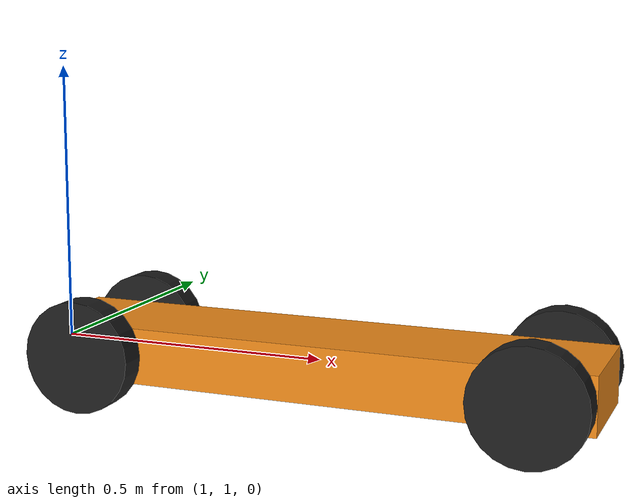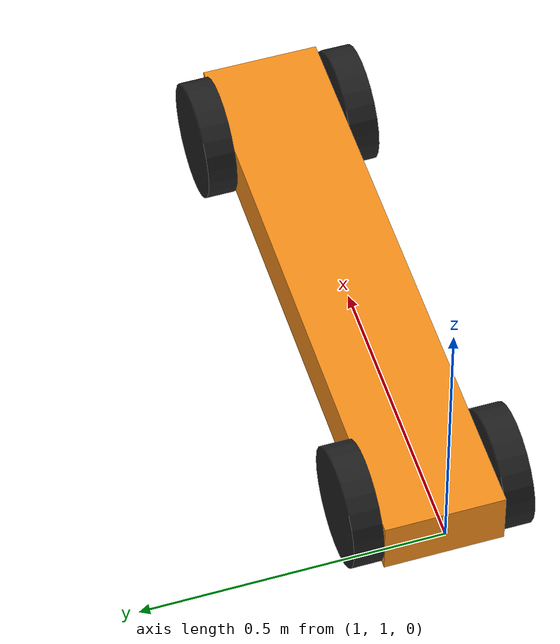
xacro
<?xml version="1.0"?>
<robot name="primeberry_one" xmlns:xacro="http://www.ros.org/wiki/xacro">

  <xacro:include filename="gazebo_control.xacro"/>

	<!-- World link -->
  <link name="world">

  </link>

	<!-- Chassis START-->
	<joint name="base_joint" type="fixed">
        <origin xyz="1.5 1.0 0.0"/>
    <parent link="world"/>
    <child link="chassis"/>
  </joint>

  <link name="chassis">
    <collision>
      <geometry>
            <box size="1 0.2 0.1"/>
      </geometry>
    </collision>
    <visual>
      <geometry>
         <box size="1 0.2 0.1"/>
      </geometry>
      <material name="orange"/>
    </visual>
    <inertial>
      <mass value="1"/>
      <inertia ixx="0.4" ixy="0.1" ixz="0.1" iyy="0.4" iyz="0.1" izz="0.2"/>
    </inertial>
  </link>

  <gazebo reference="chassis">
    <!--Stiffness -->
    <kp>1000000.0</kp>
    <!--Dampening-->
    <kd>0.1</kd>
    <dampingFactor>0</dampingFactor>
    <material>Gazebo/White</material>
    <selfCollide>true</selfCollide>
    <turnGravityOff>false</turnGravityOff>
    <mu1 value="0.1"/>
    <mu2 value="0.1"/>
    <fdir1 value="0 0 0"/>
  </gazebo>
	<!-- Chassis END -->

  <!-- Right Wheel - Start -->
	<link name="front_right_wheel">

		<collision>
		  <origin xyz="0 0 0" rpy="0 1.5708 1.5708" />
		  <geometry>
		   <cylinder length="0.05" radius="0.1"/>
		  </geometry>
		</collision>

		<visual>
		  <origin xyz="0 0 0" rpy="0 1.5708 1.5708" />
		  <geometry>
			<cylinder length="0.05" radius="0.1"/>
		  </geometry>
		  <material name="black"/>
		</visual>

		<inertial>
		  <origin xyz="0 0 0" rpy="0 1.5708 1.5708" />
		  <mass value="0.2"/>
		  <cylinder_inertia m="0.2" r="0.3" h="0.1"/>
      <inertia ixx="0.4" ixy="0.1" ixz="0.1" iyy="0.4" iyz="0.1" izz="0.2"/>
	  </inertial>

	</link>
  <gazebo reference="front_right_wheel">
    <mu1 value="2.0"/>
    <mu2 value="2.0"/>
    <kp  value="10000000.0" />
    <kd  value="1.0" />
    <fdir1 value="0 1 0"/>
    <material>Gazebo/Blue</material>
  </gazebo>

	<link name="front_right_wheel_assembly">
		<collision>
		  <origin xyz="0 0 0" rpy="0 1.5708 1.5708" />
		  <geometry>
		   <cylinder length="0.001" radius="0.04"/>
		  </geometry>
		</collision>

		<visual>
		  <origin xyz="0 0 0" rpy="0 1.5708 1.5708" />
		  <geometry>
			<cylinder length="0.001" radius="0.04"/>
		  </geometry>
		  <material name="black"/>
		</visual>

		<inertial>
		  <origin xyz="0 0 0" rpy="0 1.5708 1.5708" />
		  <mass value="0.2"/>
		  <cylinder_inertia m="0.2" r="0.3" h="0.1"/>
      <inertia ixx="0.4" ixy="0.1" ixz="0.1" iyy="0.4" iyz="0.1" izz="0.2"/>
	  </inertial>
	</link>

  <gazebo reference="front_right_wheel_assembly">
    <mu1 value="2.0"/>
    <mu2 value="2.0"/>
    <kp  value="10000000.0" />
    <kd  value="1.0" />
    <fdir1 value="0 1 0"/>
    <material>Gazebo/Black</material>
  </gazebo>

  <joint name="front_right_wheel_hinge" type="revolute">
    <parent link="chassis"/>
    <child link="front_right_wheel_assembly"/>
    <origin xyz="0.4 0.1005 0.0" rpy="0 0 0" />
    <axis xyz="0 0 1" rpy="0 0 0" />
    <limit effort="100" velocity="1" lower="-1" upper="1"/>
    <dynamics damping="0.0" friction="0.0"/>
  </joint>

  <joint name="front_right_wheel_rotate" type="continuous">
    <parent link="front_right_wheel_assembly"/>
    <child link="front_right_wheel"/>
    <origin xyz="0.0 0.025 0.0" rpy="0 0 0" />
    <axis xyz="0 1 0" rpy="0 0 0" />
    <limit effort="100" velocity="50"/>
    <dynamics damping="0.0" friction="0.0"/>
  </joint>

  <transmission name="trans_front_right_wheel_hing">
    <type>transmission_interface/SimpleTransmission</type>
    <joint name="front_right_wheel_hinge">
      <hardwareInterface>EffortJointInterface</hardwareInterface>
    </joint>
    <actuator name="motor1">
      <hardwareInterface>EffortJointInterface</hardwareInterface>
      <mechanicalReduction>1</mechanicalReduction>
    </actuator>
  </transmission>

  <transmission name="trans_front_right_wheel_rotate">
    <type>transmission_interface/SimpleTransmission</type>
    <joint name="front_right_wheel_rotate">
      <hardwareInterface>EffortJointInterface</hardwareInterface>
    </joint>
    <actuator name="motor_front_right_wheel_rotate">
      <hardwareInterface>EffortJointInterface</hardwareInterface>
      <mechanicalReduction>1</mechanicalReduction>
    </actuator>
  </transmission>

  <!-- Right Wheel - End -->

  <!-- Left Wheel - Start  -->
	<link name="front_left_wheel">

		<collision>
		  <origin xyz="0 0 0" rpy="0 1.5708 1.5708" />
		  <geometry>
		   <cylinder length="0.05" radius="0.1"/>
		  </geometry>
		</collision>

		<visual>
		  <origin xyz="0 0 0" rpy="0 1.5708 1.5708" />
		  <geometry>
			<cylinder length="0.05" radius="0.1"/>
		  </geometry>
		  <material name="black"/>
		</visual>

		<inertial>
		  <origin xyz="0 0 0" rpy="0 1.5708 1.5708" />
		  <mass value="0.2"/>
		  <cylinder_inertia m="0.2" r="0.3" h="0.1"/>
      <inertia ixx="0.4" ixy="0.1" ixz="0.1" iyy="0.4" iyz="0.1" izz="0.2"/>
	  </inertial>

	</link>
  <gazebo reference="front_left_wheel">
    <mu1 value="2.0"/>
    <mu2 value="2.0"/>
    <kp  value="10000000.0" />
    <kd  value="1.0" />
    <fdir1 value="0 1 0"/>
    <material>Gazebo/Black</material>
  </gazebo>

	<link name="front_left_wheel_assembly">
		<collision>
		  <origin xyz="0 0 0" rpy="0 1.5708 1.5708" />
		  <geometry>
		   <cylinder length="0.001" radius="0.04"/>
		  </geometry>
		</collision>

		<visual>
		  <origin xyz="0 0 0" rpy="0 1.5708 1.5708" />
		  <geometry>
			<cylinder length="0.001" radius="0.04"/>
		  </geometry>
		  <material name="black"/>
		</visual>

		<inertial>
		  <origin xyz="0 0 0" rpy="0 1.5708 1.5708" />
		  <mass value="0.2"/>
		  <cylinder_inertia m="0.2" r="0.3" h="0.1"/>
      <inertia ixx="0.4" ixy="0.1" ixz="0.1" iyy="0.4" iyz="0.1" izz="0.2"/>
	  </inertial>
	</link>

  <gazebo reference="front_left_wheel_assembly">
    <mu1 value="2.0"/>
    <mu2 value="2.0"/>
    <kp  value="10000000.0" />
    <kd  value="1.0" />
    <fdir1 value="0 1 0"/>
    <material>Gazebo/Black</material>
  </gazebo>

  <joint name="front_left_wheel_hinge" type="revolute">
    <parent link="chassis"/>
    <child link="front_left_wheel_assembly"/>
    <origin xyz="0.4 -0.1005 0.0" rpy="0 0 0" />
    <axis xyz="0 0 1" rpy="0 0 0" />
    <limit effort="100" velocity="1" lower="-1" upper="1"/>
    <dynamics damping="0.0" friction="0.0"/>
  </joint>

  <joint name="front_left_wheel_rotate" type="continuous">
    <parent link="front_left_wheel_assembly"/>
    <child link="front_left_wheel"/>
    <origin xyz="0.0 -0.025 0.0" rpy="0 0 0" />
    <axis xyz="0 1 0" rpy="0 0 0" />
    <limit effort="0" velocity="0"/>
    <dynamics damping="0.0" friction="0.0"/>
  </joint>

  <transmission name="tran2">
    <type>transmission_interface/SimpleTransmission</type>
    <joint name="front_left_wheel_hinge">
      <hardwareInterface>EffortJointInterface</hardwareInterface>
    </joint>
    <actuator name="motor2">
      <hardwareInterface>EffortJointInterface</hardwareInterface>
      <mechanicalReduction>1</mechanicalReduction>
    </actuator>
  </transmission>

  <transmission name="trans_front_left_wheel_rotate">
    <type>transmission_interface/SimpleTransmission</type>
    <joint name="front_left_wheel_rotate">
      <hardwareInterface>EffortJointInterface</hardwareInterface>
    </joint>
    <actuator name="motor_front_left_wheel_rotate">
      <hardwareInterface>EffortJointInterface</hardwareInterface>
      <mechanicalReduction>1</mechanicalReduction>
    </actuator>
  </transmission>

  <!-- Left Wheel - End -->

  <!-- Right Rear Wheel Start -->
	<link name="right_wheel_rear">

		<collision>
		  <origin xyz="0 0 0" rpy="0 1.5708 1.5708" />
		  <geometry>
		   <cylinder length="0.05" radius="0.1"/>
		  </geometry>
		</collision>

		<visual>
		  <origin xyz="0 0 0" rpy="0 1.5708 1.5708" />
		  <geometry>
			<cylinder length="0.05" radius="0.1"/>
		  </geometry>
		  <material name="black"/>
		</visual>

		<inertial>
		  <origin xyz="0 0 0" rpy="0 1.5708 1.5708" />
		  <mass value="0.2"/>
		  <cylinder_inertia m="0.2" r="0.3" h="0.1"/>
      <inertia ixx="0.4" ixy="0.1" ixz="0.1" iyy="0.4" iyz="0.1" izz="0.2"/>
	  </inertial>

	</link>

  <joint name="right_wheel_rear_rotate" type="continuous">
    <parent link="chassis"/>
    <child link="right_wheel_rear"/>
    <origin xyz="-0.4 0.125 0.0" rpy="0 0 0" />
    <axis xyz="0 1 0" rpy="0 0 0" />
    <limit effort="0" velocity="0"/>
    <dynamics damping="0.0" friction="0.0"/>
  </joint>

  <gazebo reference="right_wheel_rear">
    <mu1 value="2.0"/>
    <mu2 value="2.0"/>
    <kp  value="10000000.0" />
    <kd  value="1.0" />
    <fdir1 value="0 1 0"/>
    <material>Gazebo/Black</material>
  </gazebo>

  <!-- Right Rear Wheel End -->

    <!-- Right Rear Wheel Start -->
	<link name="left_wheel_rear">

		<collision>
		  <origin xyz="0 0 0" rpy="0 1.5708 1.5708" />
		  <geometry>
		   <cylinder length="0.05" radius="0.1"/>
		  </geometry>
		</collision>

		<visual>
		  <origin xyz="0 0 0" rpy="0 1.5708 1.5708" />
		  <geometry>
			<cylinder length="0.05" radius="0.1"/>
		  </geometry>
		  <material name="black"/>
		</visual>

		<inertial>
		  <origin xyz="0 0 0" rpy="0 1.5708 1.5708" />
		  <mass value="0.2"/>
		  <cylinder_inertia m="0.2" r="0.3" h="0.1"/>
      <inertia ixx="0.4" ixy="0.1" ixz="0.1" iyy="0.4" iyz="0.1" izz="0.2"/>
	  </inertial>

	</link>

  <joint name="left_wheel_rear_rotate" type="continuous">
    <parent link="chassis"/>
    <child link="left_wheel_rear"/>
    <origin xyz="-0.4 -0.125 0.0" rpy="0 0 0" />
    <axis xyz="0 1 0" rpy="0 0 0" />
    <limit effort="0" velocity="0"/>
    <dynamics damping="0.0" friction="0.0"/>
  </joint>

  <gazebo reference="left_wheel_rear">
    <mu1 value="2.0"/>
    <mu2 value="2.0"/>
    <kp  value="10000000.0" />
    <kd  value="1.0" />
    <fdir1 value="0 1 0"/>
    <material>Gazebo/Blue</material>
  </gazebo>

  <!-- Left Rear Wheel End -->

</robot>
